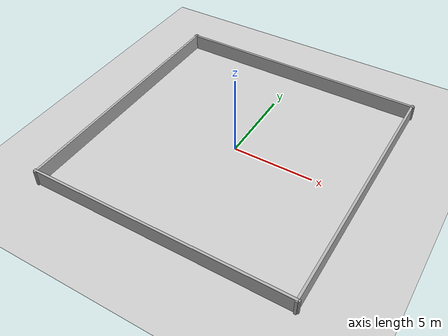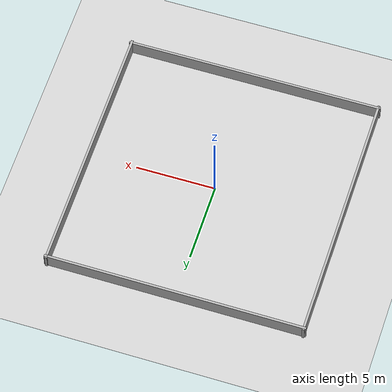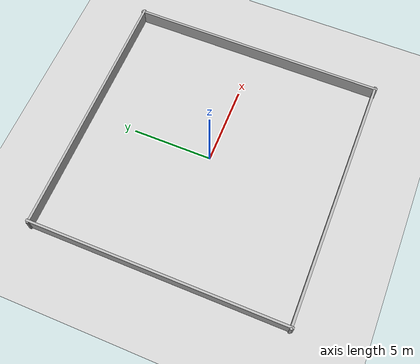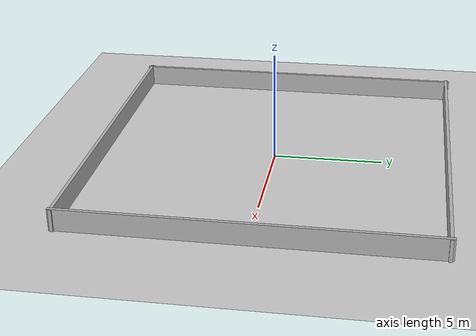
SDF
<?xml version="1.0"?>
<sdf version="1.6">
  <world name="default">

    <include>
      <uri>model://ground_plane</uri>
    </include>

    <include>
      <uri>model://sun</uri>
    </include>

    <scene>
      <shadows>false</shadows>
    </scene>

    <gui fullscreen='0'>
      <camera name='user_camera'>
        <pose frame=''>0 0 28 0 1.5708 0</pose>
        <view_controller>orbit</view_controller>
        <projection_type>perspective</projection_type>
      </camera>
    </gui>

    <!-- Boundary walls: one static model, four box links at +/-8 m. -->
    <model name="arena_walls">
      <static>true</static>

      <link name="wall_north">
        <pose>0 8 0.5 0 0 0</pose>
        <collision name="collision">
          <geometry><box><size>16.3 0.15 1.0</size></box></geometry>
        </collision>
        <visual name="visual">
          <geometry><box><size>16.3 0.15 1.0</size></box></geometry>
          <material>
            <ambient>0.7 0.7 0.7 1</ambient>
            <diffuse>0.7 0.7 0.7 1</diffuse>
          </material>
        </visual>
      </link>

      <link name="wall_south">
        <pose>0 -8 0.5 0 0 0</pose>
        <collision name="collision">
          <geometry><box><size>16.3 0.15 1.0</size></box></geometry>
        </collision>
        <visual name="visual">
          <geometry><box><size>16.3 0.15 1.0</size></box></geometry>
          <material>
            <ambient>0.7 0.7 0.7 1</ambient>
            <diffuse>0.7 0.7 0.7 1</diffuse>
          </material>
        </visual>
      </link>

      <link name="wall_east">
        <pose>8 0 0.5 0 0 0</pose>
        <collision name="collision">
          <geometry><box><size>0.15 16.3 1.0</size></box></geometry>
        </collision>
        <visual name="visual">
          <geometry><box><size>0.15 16.3 1.0</size></box></geometry>
          <material>
            <ambient>0.7 0.7 0.7 1</ambient>
            <diffuse>0.7 0.7 0.7 1</diffuse>
          </material>
        </visual>
      </link>

      <link name="wall_west">
        <pose>-8 0 0.5 0 0 0</pose>
        <collision name="collision">
          <geometry><box><size>0.15 16.3 1.0</size></box></geometry>
        </collision>
        <visual name="visual">
          <geometry><box><size>0.15 16.3 1.0</size></box></geometry>
          <material>
            <ambient>0.7 0.7 0.7 1</ambient>
            <diffuse>0.7 0.7 0.7 1</diffuse>
          </material>
        </visual>
      </link>
    </model>

    <physics type="ode">
      <real_time_update_rate>1000.0</real_time_update_rate>
      <max_step_size>0.001</max_step_size>
      <real_time_factor>1</real_time_factor>
      <ode>
        <solver>
          <type>quick</type>
          <iters>150</iters>
          <precon_iters>0</precon_iters>
          <sor>1.400000</sor>
          <use_dynamic_moi_rescaling>1</use_dynamic_moi_rescaling>
        </solver>
        <constraints>
          <cfm>0.00001</cfm>
          <erp>0.2</erp>
          <contact_max_correcting_vel>2000.000000</contact_max_correcting_vel>
          <contact_surface_layer>0.01000</contact_surface_layer>
        </constraints>
      </ode>
    </physics>

  </world>
</sdf>
